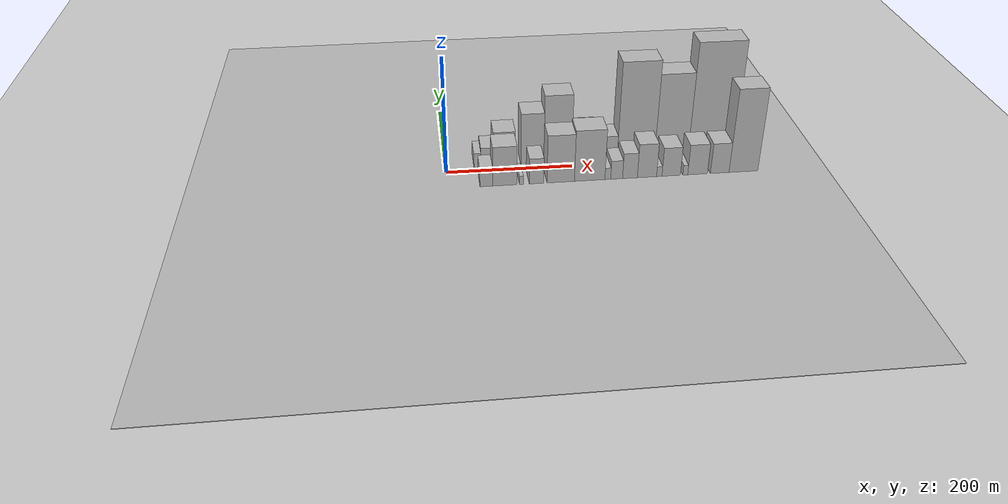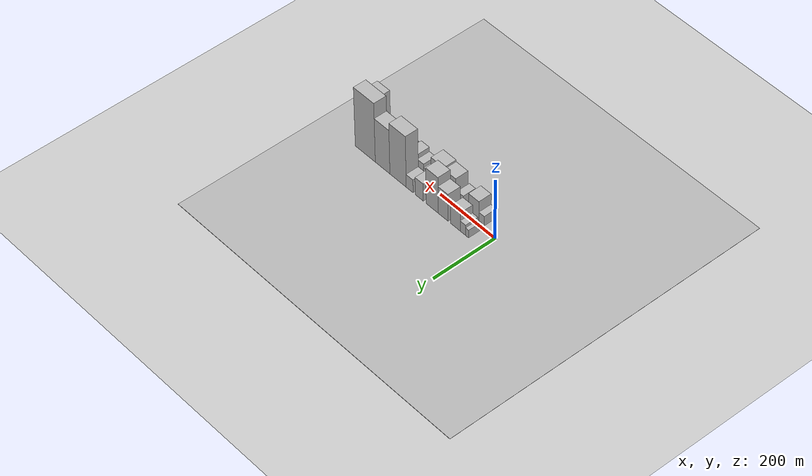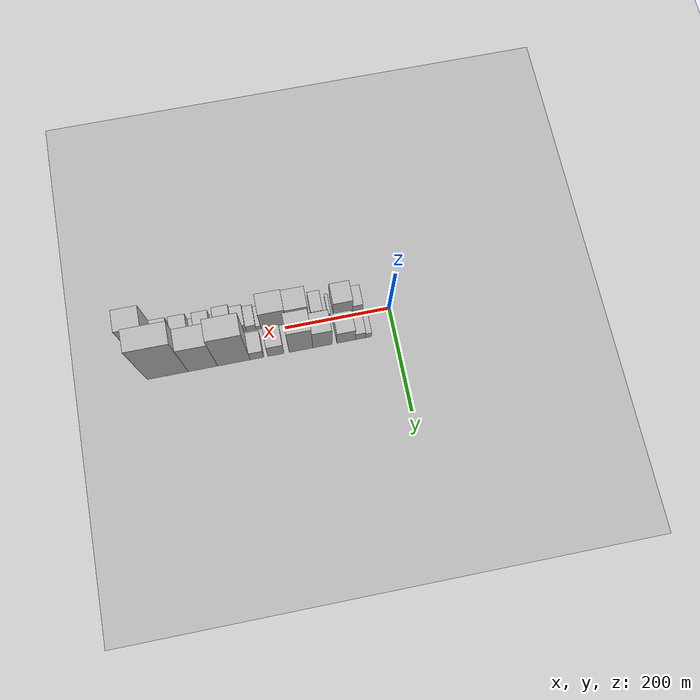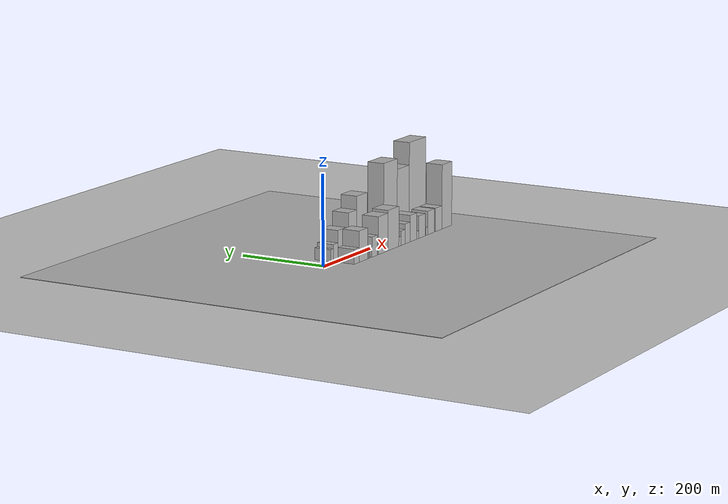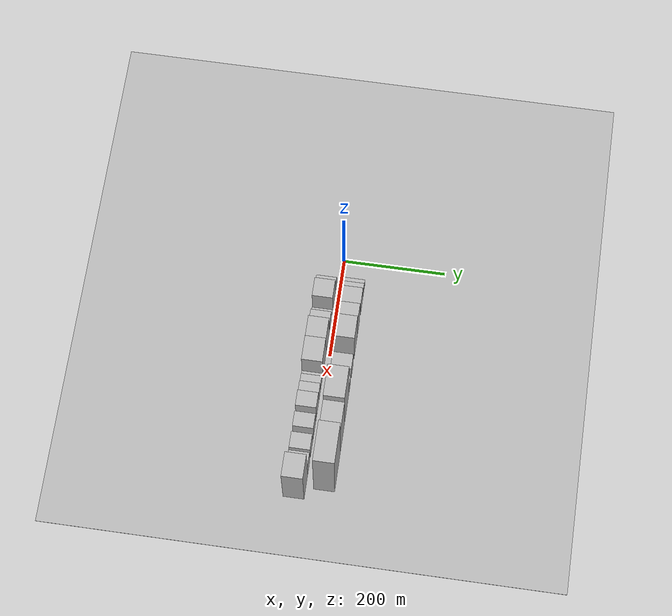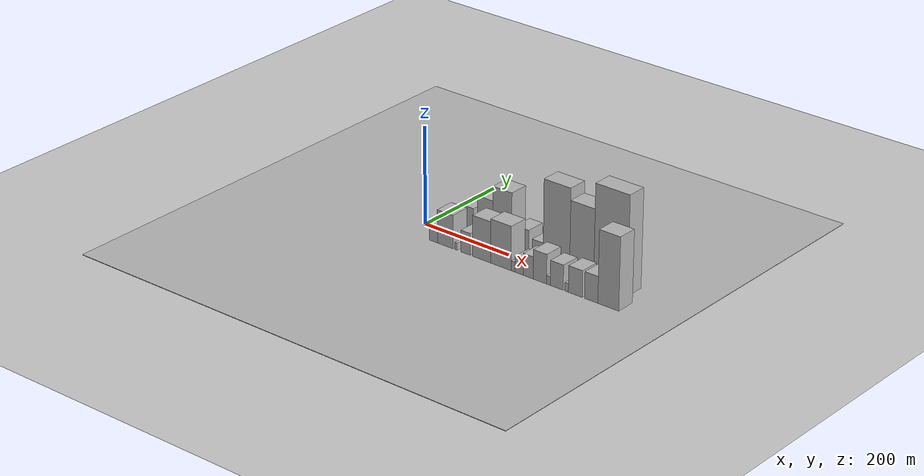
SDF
<?xml version="1.0" encoding="utf-8"?>

<sdf version="1.6">

   <world name="default">

      <gui fullscreen="0">

         <camera name="user_camera">

            <pose>-15 0 4.57585 0 0 0</pose>

            <view_controller>orbit</view_controller>

         </camera>

      </gui>

      <scene>

         <sky>

           <clouds>

             <speed>12</speed>

           </clouds>

         </sky>

         <ambient>0.4 0.4 0.4 1</ambient>

         <background>0.7 0.7 0.7 1</background>

         <shadows>1</shadows>

      </scene>

      <gravity>0 0 -9.8066</gravity>

      <magnetic_field>6e-06 2.3e-05 -4.2e-05</magnetic_field>

      <physics default="0" name="default_physics" type="ode">

         <ode>

            <solver>

               <type>quick</type>

               <iters>10</iters>

               <sor>1.0</sor>

               <use_dynamic_moi_rescaling>0</use_dynamic_moi_rescaling>

            </solver>

            <constraints>

               <cfm>0</cfm>

               <erp>0.2</erp>

               <contact_max_correcting_vel>100</contact_max_correcting_vel>

               <contact_surface_layer>0.001</contact_surface_layer>

            </constraints>

         </ode>

         <max_step_size>0.004</max_step_size>

         <real_time_factor>1</real_time_factor>

         <real_time_update_rate>250</real_time_update_rate>

      </physics>

      <light name="sun" type="directional">

         <cast_shadows>1</cast_shadows>

         <pose>0 0 10 0 0 0</pose>

         <diffuse>0.8 0.8 0.8 1</diffuse>

         <specular>0.2 0.2 0.2 1</specular>

         <attenuation>

            <range>1000</range>

            <constant>0.9</constant>

            <linear>0.01</linear>

            <quadratic>0.001</quadratic>

         </attenuation>

         <direction>-0.5 0.1 -0.9</direction>

      </light>

      <include>

         <name>ground_plane_1</name>

         <uri>model://HANNAS_ground_plane</uri>

         <pose>0 0 0  0 0 0</pose>

      </include>

      <include>

         <name>ground_plane_2</name>

         <uri>model://HANNAS_ground_plane</uri>

         <pose>100 0 0  0 0 0</pose>

      </include>

      <model name="building_1">

         <static>1</static>

         <pose frame="">49.5234 27.5000 0 0.000000 0.000000 1.570796</pose>

         <link name="link">

            <pose frame="">0 0 13.50 0 0 0</pose>

            <collision name="collision">

               <geometry>

                  <box>

                     <size>40.0000 11.0468 27.0000</size>

                  </box>

               </geometry>

               <max_contacts>10</max_contacts>

               <surface>

                  <contact>

                     <ode/>

                  </contact>

                  <bounce/>

                  <friction>

                     <torsional>

                        <ode/>

                     </torsional>

                     <ode/>

                  </friction>

               </surface>

            </collision>

            <visual name="visual">

               <cast_shadows>0</cast_shadows>

               <geometry>

                  <box>

                     <size>40.0000 11.0468 27.0000</size>

                  </box>

               </geometry>

               <material>

                  <script>

                     <uri>model://HANNAS_wall/materials/scripts</uri>

                     <uri>model://HANNAS_wall/materials/textures</uri>

                     <name>vrc/HANNAS_wall</name>

                  </script>

               </material>

            </visual>

            <self_collide>0</self_collide>

            <enable_wind>0</enable_wind>

            <kinematic>0</kinematic>

         </link>

      </model>

      <model name="building_2">

         <static>1</static>

         <pose frame="">64.9606 27.5000 0 0.000000 0.000000 1.570796</pose>

         <link name="link">

            <pose frame="">0 0 18.00 0 0 0</pose>

            <collision name="collision">

               <geometry>

                  <box>

                     <size>40.0000 19.8275 36.0000</size>

                  </box>

               </geometry>

               <max_contacts>10</max_contacts>

               <surface>

                  <contact>

                     <ode/>

                  </contact>

                  <bounce/>

                  <friction>

                     <torsional>

                        <ode/>

                     </torsional>

                     <ode/>

                  </friction>

               </surface>

            </collision>

            <visual name="visual">

               <cast_shadows>0</cast_shadows>

               <geometry>

                  <box>

                     <size>40.0000 19.8275 36.0000</size>

                  </box>

               </geometry>

               <material>

                  <script>

                     <uri>model://HANNAS_wall/materials/scripts</uri>

                     <uri>model://HANNAS_wall/materials/textures</uri>

                     <name>vrc/HANNAS_wall</name>

                  </script>

               </material>

            </visual>

            <self_collide>0</self_collide>

            <enable_wind>0</enable_wind>

            <kinematic>0</kinematic>

         </link>

      </model>

      <model name="building_3">

         <static>1</static>

         <pose frame="">92.3410 27.5000 0 0.000000 0.000000 1.570796</pose>

         <link name="link">

            <pose frame="">0 0 31.50 0 0 0</pose>

            <collision name="collision">

               <geometry>

                  <box>

                     <size>40.0000 34.9333 63.0000</size>

                  </box>

               </geometry>

               <max_contacts>10</max_contacts>

               <surface>

                  <contact>

                     <ode/>

                  </contact>

                  <bounce/>

                  <friction>

                     <torsional>

                        <ode/>

                     </torsional>

                     <ode/>

                  </friction>

               </surface>

            </collision>

            <visual name="visual">

               <cast_shadows>0</cast_shadows>

               <geometry>

                  <box>

                     <size>40.0000 34.9333 63.0000</size>

                  </box>

               </geometry>

               <material>

                  <script>

                     <uri>model://HANNAS_wall/materials/scripts</uri>

                     <uri>model://HANNAS_wall/materials/textures</uri>

                     <name>vrc/HANNAS_wall</name>

                  </script>

               </material>

            </visual>

            <self_collide>0</self_collide>

            <enable_wind>0</enable_wind>

            <kinematic>0</kinematic>

         </link>

      </model>

      <model name="building_4">

         <static>1</static>

         <pose frame="">137.1429 27.5000 0 0.000000 0.000000 1.570796</pose>

         <link name="link">

            <pose frame="">0 0 46.50 0 0 0</pose>

            <collision name="collision">

               <geometry>

                  <box>

                     <size>40.0000 36.6705 93.0000</size>

                  </box>

               </geometry>

               <max_contacts>10</max_contacts>

               <surface>

                  <contact>

                     <ode/>

                  </contact>

                  <bounce/>

                  <friction>

                     <torsional>

                        <ode/>

                     </torsional>

                     <ode/>

                  </friction>

               </surface>

            </collision>

            <visual name="visual">

               <cast_shadows>0</cast_shadows>

               <geometry>

                  <box>

                     <size>40.0000 36.6705 93.0000</size>

                  </box>

               </geometry>

               <material>

                  <script>

                     <uri>model://HANNAS_wall/materials/scripts</uri>

                     <uri>model://HANNAS_wall/materials/textures</uri>

                     <name>vrc/HANNAS_wall</name>

                  </script>

               </material>

            </visual>

            <self_collide>0</self_collide>

            <enable_wind>0</enable_wind>

            <kinematic>0</kinematic>

         </link>

      </model>

      <model name="building_5">

         <static>1</static>

         <pose frame="">177.8812 27.5000 0 0.000000 0.000000 1.570796</pose>

         <link name="link">

            <pose frame="">0 0 61.50 0 0 0</pose>

            <collision name="collision">

               <geometry>

                  <box>

                     <size>40.0000 44.8061 123.0000</size>

                  </box>

               </geometry>

               <max_contacts>10</max_contacts>

               <surface>

                  <contact>

                     <ode/>

                  </contact>

                  <bounce/>

                  <friction>

                     <torsional>

                        <ode/>

                     </torsional>

                     <ode/>

                  </friction>

               </surface>

            </collision>

            <visual name="visual">

               <cast_shadows>0</cast_shadows>

               <geometry>

                  <box>

                     <size>40.0000 44.8061 123.0000</size>

                  </box>

               </geometry>

               <material>

                  <script>

                     <uri>model://HANNAS_wall/materials/scripts</uri>

                     <uri>model://HANNAS_wall/materials/textures</uri>

                     <name>vrc/HANNAS_wall</name>

                  </script>

               </material>

            </visual>

            <self_collide>0</self_collide>

            <enable_wind>0</enable_wind>

            <kinematic>0</kinematic>

         </link>

      </model>

      <model name="building_6">

         <static>1</static>

         <pose frame="">225.2993 27.5000 0 0.000000 0.000000 1.570796</pose>

         <link name="link">

            <pose frame="">0 0 30.00 0 0 0</pose>

            <collision name="collision">

               <geometry>

                  <box>

                     <size>40.0000 30.0302 60.0000</size>

                  </box>

               </geometry>

               <max_contacts>10</max_contacts>

               <surface>

                  <contact>

                     <ode/>

                  </contact>

                  <bounce/>

                  <friction>

                     <torsional>

                        <ode/>

                     </torsional>

                     <ode/>

                  </friction>

               </surface>

            </collision>

            <visual name="visual">

               <cast_shadows>0</cast_shadows>

               <geometry>

                  <box>

                     <size>40.0000 30.0302 60.0000</size>

                  </box>

               </geometry>

               <material>

                  <script>

                     <uri>model://HANNAS_wall/materials/scripts</uri>

                     <uri>model://HANNAS_wall/materials/textures</uri>

                     <name>vrc/HANNAS_wall</name>

                  </script>

               </material>

            </visual>

            <self_collide>0</self_collide>

            <enable_wind>0</enable_wind>

            <kinematic>0</kinematic>

         </link>

      </model>

      <model name="building_7">

         <static>1</static>

         <pose frame="">261.1327 27.5000 0 0.000000 0.000000 1.570796</pose>

         <link name="link">

            <pose frame="">0 0 22.50 0 0 0</pose>

            <collision name="collision">

               <geometry>

                  <box>

                     <size>40.0000 25.6365 45.0000</size>

                  </box>

               </geometry>

               <max_contacts>10</max_contacts>

               <surface>

                  <contact>

                     <ode/>

                  </contact>

                  <bounce/>

                  <friction>

                     <torsional>

                        <ode/>

                     </torsional>

                     <ode/>

                  </friction>

               </surface>

            </collision>

            <visual name="visual">

               <cast_shadows>0</cast_shadows>

               <geometry>

                  <box>

                     <size>40.0000 25.6365 45.0000</size>

                  </box>

               </geometry>

               <material>

                  <script>

                     <uri>model://HANNAS_wall/materials/scripts</uri>

                     <uri>model://HANNAS_wall/materials/textures</uri>

                     <name>vrc/HANNAS_wall</name>

                  </script>

               </material>

            </visual>

            <self_collide>0</self_collide>

            <enable_wind>0</enable_wind>

            <kinematic>0</kinematic>

         </link>

      </model>

      <model name="building_8">

         <static>1</static>

         <pose frame="">304.5386 27.5000 0 0.000000 0.000000 1.570796</pose>

         <link name="link">

            <pose frame="">0 0 87.00 0 0 0</pose>

            <collision name="collision">

               <geometry>

                  <box>

                     <size>40.0000 61.1754 174.0000</size>

                  </box>

               </geometry>

               <max_contacts>10</max_contacts>

               <surface>

                  <contact>

                     <ode/>

                  </contact>

                  <bounce/>

                  <friction>

                     <torsional>

                        <ode/>

                     </torsional>

                     <ode/>

                  </friction>

               </surface>

            </collision>

            <visual name="visual">

               <cast_shadows>0</cast_shadows>

               <geometry>

                  <box>

                     <size>40.0000 61.1754 174.0000</size>

                  </box>

               </geometry>

               <material>

                  <script>

                     <uri>model://HANNAS_wall/materials/scripts</uri>

                     <uri>model://HANNAS_wall/materials/textures</uri>

                     <name>vrc/HANNAS_wall</name>

                  </script>

               </material>

            </visual>

            <self_collide>0</self_collide>

            <enable_wind>0</enable_wind>

            <kinematic>0</kinematic>

         </link>

      </model>

      <model name="building_9">

         <static>1</static>

         <pose frame="">362.6534 27.5000 0 0.000000 0.000000 1.570796</pose>

         <link name="link">

            <pose frame="">0 0 75.00 0 0 0</pose>

            <collision name="collision">

               <geometry>

                  <box>

                     <size>40.0000 55.0542 150.0000</size>

                  </box>

               </geometry>

               <max_contacts>10</max_contacts>

               <surface>

                  <contact>

                     <ode/>

                  </contact>

                  <bounce/>

                  <friction>

                     <torsional>

                        <ode/>

                     </torsional>

                     <ode/>

                  </friction>

               </surface>

            </collision>

            <visual name="visual">

               <cast_shadows>0</cast_shadows>

               <geometry>

                  <box>

                     <size>40.0000 55.0542 150.0000</size>

                  </box>

               </geometry>

               <material>

                  <script>

                     <uri>model://HANNAS_wall/materials/scripts</uri>

                     <uri>model://HANNAS_wall/materials/textures</uri>

                     <name>vrc/HANNAS_wall</name>

                  </script>

               </material>

            </visual>

            <self_collide>0</self_collide>

            <enable_wind>0</enable_wind>

            <kinematic>0</kinematic>

         </link>

      </model>

      <model name="building_10">

         <static>1</static>

         <pose frame="">428.3415 27.5000 0 0.000000 0.000000 1.570796</pose>

         <link name="link">

            <pose frame="">0 0 100.50 0 0 0</pose>

            <collision name="collision">

               <geometry>

                  <box>

                     <size>40.0000 76.3220 201.0000</size>

                  </box>

               </geometry>

               <max_contacts>10</max_contacts>

               <surface>

                  <contact>

                     <ode/>

                  </contact>

                  <bounce/>

                  <friction>

                     <torsional>

                        <ode/>

                     </torsional>

                     <ode/>

                  </friction>

               </surface>

            </collision>

            <visual name="visual">

               <cast_shadows>0</cast_shadows>

               <geometry>

                  <box>

                     <size>40.0000 76.3220 201.0000</size>

                  </box>

               </geometry>

               <material>

                  <script>

                     <uri>model://HANNAS_wall/materials/scripts</uri>

                     <uri>model://HANNAS_wall/materials/textures</uri>

                     <name>vrc/HANNAS_wall</name>

                  </script>

               </material>

            </visual>

            <self_collide>0</self_collide>

            <enable_wind>0</enable_wind>

            <kinematic>0</kinematic>

         </link>

      </model>

      <model name="building_11">

         <static>1</static>

         <pose frame="">58.8940 -27.5000 0 0.000000 0.000000 1.570796</pose>

         <link name="link">

            <pose frame="">0 0 16.50 0 0 0</pose>

            <collision name="collision">

               <geometry>

                  <box>

                     <size>40.0000 19.7880 33.0000</size>

                  </box>

               </geometry>

               <max_contacts>10</max_contacts>

               <surface>

                  <contact>

                     <ode/>

                  </contact>

                  <bounce/>

                  <friction>

                     <torsional>

                        <ode/>

                     </torsional>

                     <ode/>

                  </friction>

               </surface>

            </collision>

            <visual name="visual">

               <cast_shadows>0</cast_shadows>

               <geometry>

                  <box>

                     <size>40.0000 19.7880 33.0000</size>

                  </box>

               </geometry>

               <material>

                  <script>

                     <uri>model://HANNAS_wall/materials/scripts</uri>

                     <uri>model://HANNAS_wall/materials/textures</uri>

                     <name>vrc/HANNAS_wall</name>

                  </script>

               </material>

            </visual>

            <self_collide>0</self_collide>

            <enable_wind>0</enable_wind>

            <kinematic>0</kinematic>

         </link>

      </model>

      <model name="building_12">

         <static>1</static>

         <pose frame="">87.5025 -27.5000 0 0.000000 0.000000 1.570796</pose>

         <link name="link">

            <pose frame="">0 0 34.50 0 0 0</pose>

            <collision name="collision">

               <geometry>

                  <box>

                     <size>40.0000 37.4291 69.0000</size>

                  </box>

               </geometry>

               <max_contacts>10</max_contacts>

               <surface>

                  <contact>

                     <ode/>

                  </contact>

                  <bounce/>

                  <friction>

                     <torsional>

                        <ode/>

                     </torsional>

                     <ode/>

                  </friction>

               </surface>

            </collision>

            <visual name="visual">

               <cast_shadows>0</cast_shadows>

               <geometry>

                  <box>

                     <size>40.0000 37.4291 69.0000</size>

                  </box>

               </geometry>

               <material>

                  <script>

                     <uri>model://HANNAS_wall/materials/scripts</uri>

                     <uri>model://HANNAS_wall/materials/textures</uri>

                     <name>vrc/HANNAS_wall</name>

                  </script>

               </material>

            </visual>

            <self_collide>0</self_collide>

            <enable_wind>0</enable_wind>

            <kinematic>0</kinematic>

         </link>

      </model>

      <model name="building_13">

         <static>1</static>

         <pose frame="">113.2656 -27.5000 0 0.000000 0.000000 1.570796</pose>

         <link name="link">

            <pose frame="">0 0 7.50 0 0 0</pose>

            <collision name="collision">

               <geometry>

                  <box>

                     <size>40.0000 6.0970 15.0000</size>

                  </box>

               </geometry>

               <max_contacts>10</max_contacts>

               <surface>

                  <contact>

                     <ode/>

                  </contact>

                  <bounce/>

                  <friction>

                     <torsional>

                        <ode/>

                     </torsional>

                     <ode/>

                  </friction>

               </surface>

            </collision>

            <visual name="visual">

               <cast_shadows>0</cast_shadows>

               <geometry>

                  <box>

                     <size>40.0000 6.0970 15.0000</size>

                  </box>

               </geometry>

               <material>

                  <script>

                     <uri>model://HANNAS_wall/materials/scripts</uri>

                     <uri>model://HANNAS_wall/materials/textures</uri>

                     <name>vrc/HANNAS_wall</name>

                  </script>

               </material>

            </visual>

            <self_collide>0</self_collide>

            <enable_wind>0</enable_wind>

            <kinematic>0</kinematic>

         </link>

      </model>

      <model name="building_14">

         <static>1</static>

         <pose frame="">136.6493 -27.5000 0 0.000000 0.000000 1.570796</pose>

         <link name="link">

            <pose frame="">0 0 22.50 0 0 0</pose>

            <collision name="collision">

               <geometry>

                  <box>

                     <size>40.0000 22.6705 45.0000</size>

                  </box>

               </geometry>

               <max_contacts>10</max_contacts>

               <surface>

                  <contact>

                     <ode/>

                  </contact>

                  <bounce/>

                  <friction>

                     <torsional>

                        <ode/>

                     </torsional>

                     <ode/>

                  </friction>

               </surface>

            </collision>

            <visual name="visual">

               <cast_shadows>0</cast_shadows>

               <geometry>

                  <box>

                     <size>40.0000 22.6705 45.0000</size>

                  </box>

               </geometry>

               <material>

                  <script>

                     <uri>model://HANNAS_wall/materials/scripts</uri>

                     <uri>model://HANNAS_wall/materials/textures</uri>

                     <name>vrc/HANNAS_wall</name>

                  </script>

               </material>

            </visual>

            <self_collide>0</self_collide>

            <enable_wind>0</enable_wind>

            <kinematic>0</kinematic>

         </link>

      </model>

      <model name="building_15">

         <static>1</static>

         <pose frame="">174.4531 -27.5000 0 0.000000 0.000000 1.570796</pose>

         <link name="link">

            <pose frame="">0 0 42.00 0 0 0</pose>

            <collision name="collision">

               <geometry>

                  <box>

                     <size>40.0000 42.9371 84.0000</size>

                  </box>

               </geometry>

               <max_contacts>10</max_contacts>

               <surface>

                  <contact>

                     <ode/>

                  </contact>

                  <bounce/>

                  <friction>

                     <torsional>

                        <ode/>

                     </torsional>

                     <ode/>

                  </friction>

               </surface>

            </collision>

            <visual name="visual">

               <cast_shadows>0</cast_shadows>

               <geometry>

                  <box>

                     <size>40.0000 42.9371 84.0000</size>

                  </box>

               </geometry>

               <material>

                  <script>

                     <uri>model://HANNAS_wall/materials/scripts</uri>

                     <uri>model://HANNAS_wall/materials/textures</uri>

                     <name>vrc/HANNAS_wall</name>

                  </script>

               </material>

            </visual>

            <self_collide>0</self_collide>

            <enable_wind>0</enable_wind>

            <kinematic>0</kinematic>

         </link>

      </model>

      <model name="building_16">

         <static>1</static>

         <pose frame="">219.8543 -27.5000 0 0.000000 0.000000 1.570796</pose>

         <link name="link">

            <pose frame="">0 0 45.00 0 0 0</pose>

            <collision name="collision">

               <geometry>

                  <box>

                     <size>40.0000 47.8654 90.0000</size>

                  </box>

               </geometry>

               <max_contacts>10</max_contacts>

               <surface>

                  <contact>

                     <ode/>

                  </contact>

                  <bounce/>

                  <friction>

                     <torsional>

                        <ode/>

                     </torsional>

                     <ode/>

                  </friction>

               </surface>

            </collision>

            <visual name="visual">

               <cast_shadows>0</cast_shadows>

               <geometry>

                  <box>

                     <size>40.0000 47.8654 90.0000</size>

                  </box>

               </geometry>

               <material>

                  <script>

                     <uri>model://HANNAS_wall/materials/scripts</uri>

                     <uri>model://HANNAS_wall/materials/textures</uri>

                     <name>vrc/HANNAS_wall</name>

                  </script>

               </material>

            </visual>

            <self_collide>0</self_collide>

            <enable_wind>0</enable_wind>

            <kinematic>0</kinematic>

         </link>

      </model>

      <model name="building_17">

         <static>1</static>

         <pose frame="">248.3898 -27.5000 0 0.000000 0.000000 1.570796</pose>

         <link name="link">

            <pose frame="">0 0 10.50 0 0 0</pose>

            <collision name="collision">

               <geometry>

                  <box>

                     <size>40.0000 9.2055 21.0000</size>

                  </box>

               </geometry>

               <max_contacts>10</max_contacts>

               <surface>

                  <contact>

                     <ode/>

                  </contact>

                  <bounce/>

                  <friction>

                     <torsional>

                        <ode/>

                     </torsional>

                     <ode/>

                  </friction>

               </surface>

            </collision>

            <visual name="visual">

               <cast_shadows>0</cast_shadows>

               <geometry>

                  <box>

                     <size>40.0000 9.2055 21.0000</size>

                  </box>

               </geometry>

               <material>

                  <script>

                     <uri>model://HANNAS_wall/materials/scripts</uri>

                     <uri>model://HANNAS_wall/materials/textures</uri>

                     <name>vrc/HANNAS_wall</name>

                  </script>

               </material>

            </visual>

            <self_collide>0</self_collide>

            <enable_wind>0</enable_wind>

            <kinematic>0</kinematic>

         </link>

      </model>

      <model name="building_18">

         <static>1</static>

         <pose frame="">262.3675 -27.5000 0 0.000000 0.000000 1.570796</pose>

         <link name="link">

            <pose frame="">0 0 16.50 0 0 0</pose>

            <collision name="collision">

               <geometry>

                  <box>

                     <size>40.0000 18.7498 33.0000</size>

                  </box>

               </geometry>

               <max_contacts>10</max_contacts>

               <surface>

                  <contact>

                     <ode/>

                  </contact>

                  <bounce/>

                  <friction>

                     <torsional>

                        <ode/>

                     </torsional>

                     <ode/>

                  </friction>

               </surface>

            </collision>

            <visual name="visual">

               <cast_shadows>0</cast_shadows>

               <geometry>

                  <box>

                     <size>40.0000 18.7498 33.0000</size>

                  </box>

               </geometry>

               <material>

                  <script>

                     <uri>model://HANNAS_wall/materials/scripts</uri>

                     <uri>model://HANNAS_wall/materials/textures</uri>

                     <name>vrc/HANNAS_wall</name>

                  </script>

               </material>

            </visual>

            <self_collide>0</self_collide>

            <enable_wind>0</enable_wind>

            <kinematic>0</kinematic>

         </link>

      </model>

      <model name="building_19">

         <static>1</static>

         <pose frame="">283.4699 -27.5000 0 0.000000 0.000000 1.570796</pose>

         <link name="link">

            <pose frame="">0 0 22.50 0 0 0</pose>

            <collision name="collision">

               <geometry>

                  <box>

                     <size>40.0000 23.4550 45.0000</size>

                  </box>

               </geometry>

               <max_contacts>10</max_contacts>

               <surface>

                  <contact>

                     <ode/>

                  </contact>

                  <bounce/>

                  <friction>

                     <torsional>

                        <ode/>

                     </torsional>

                     <ode/>

                  </friction>

               </surface>

            </collision>

            <visual name="visual">

               <cast_shadows>0</cast_shadows>

               <geometry>

                  <box>

                     <size>40.0000 23.4550 45.0000</size>

                  </box>

               </geometry>

               <material>

                  <script>

                     <uri>model://HANNAS_wall/materials/scripts</uri>

                     <uri>model://HANNAS_wall/materials/textures</uri>

                     <name>vrc/HANNAS_wall</name>

                  </script>

               </material>

            </visual>

            <self_collide>0</self_collide>

            <enable_wind>0</enable_wind>

            <kinematic>0</kinematic>

         </link>

      </model>

      <model name="building_20">

         <static>1</static>

         <pose frame="">310.4709 -27.5000 0 0.000000 0.000000 1.570796</pose>

         <link name="link">

            <pose frame="">0 0 30.00 0 0 0</pose>

            <collision name="collision">

               <geometry>

                  <box>

                     <size>40.0000 30.5470 60.0000</size>

                  </box>

               </geometry>

               <max_contacts>10</max_contacts>

               <surface>

                  <contact>

                     <ode/>

                  </contact>

                  <bounce/>

                  <friction>

                     <torsional>

                        <ode/>

                     </torsional>

                     <ode/>

                  </friction>

               </surface>

            </collision>

            <visual name="visual">

               <cast_shadows>0</cast_shadows>

               <geometry>

                  <box>

                     <size>40.0000 30.5470 60.0000</size>

                  </box>

               </geometry>

               <material>

                  <script>

                     <uri>model://HANNAS_wall/materials/scripts</uri>

                     <uri>model://HANNAS_wall/materials/textures</uri>

                     <name>vrc/HANNAS_wall</name>

                  </script>

               </material>

            </visual>

            <self_collide>0</self_collide>

            <enable_wind>0</enable_wind>

            <kinematic>0</kinematic>

         </link>

      </model>

      <model name="building_21">

         <static>1</static>

         <pose frame="">330.0620 -27.5000 0 0.000000 0.000000 1.570796</pose>

         <link name="link">

            <pose frame="">0 0 9.00 0 0 0</pose>

            <collision name="collision">

               <geometry>

                  <box>

                     <size>40.0000 8.6353 18.0000</size>

                  </box>

               </geometry>

               <max_contacts>10</max_contacts>

               <surface>

                  <contact>

                     <ode/>

                  </contact>

                  <bounce/>

                  <friction>

                     <torsional>

                        <ode/>

                     </torsional>

                     <ode/>

                  </friction>

               </surface>

            </collision>

            <visual name="visual">

               <cast_shadows>0</cast_shadows>

               <geometry>

                  <box>

                     <size>40.0000 8.6353 18.0000</size>

                  </box>

               </geometry>

               <material>

                  <script>

                     <uri>model://HANNAS_wall/materials/scripts</uri>

                     <uri>model://HANNAS_wall/materials/textures</uri>

                     <name>vrc/HANNAS_wall</name>

                  </script>

               </material>

            </visual>

            <self_collide>0</self_collide>

            <enable_wind>0</enable_wind>

            <kinematic>0</kinematic>

         </link>

      </model>

      <model name="building_22">

         <static>1</static>

         <pose frame="">349.1088 -27.5000 0 0.000000 0.000000 1.570796</pose>

         <link name="link">

            <pose frame="">0 0 25.50 0 0 0</pose>

            <collision name="collision">

               <geometry>

                  <box>

                     <size>40.0000 29.4584 51.0000</size>

                  </box>

               </geometry>

               <max_contacts>10</max_contacts>

               <surface>

                  <contact>

                     <ode/>

                  </contact>

                  <bounce/>

                  <friction>

                     <torsional>

                        <ode/>

                     </torsional>

                     <ode/>

                  </friction>

               </surface>

            </collision>

            <visual name="visual">

               <cast_shadows>0</cast_shadows>

               <geometry>

                  <box>

                     <size>40.0000 29.4584 51.0000</size>

                  </box>

               </geometry>

               <material>

                  <script>

                     <uri>model://HANNAS_wall/materials/scripts</uri>

                     <uri>model://HANNAS_wall/materials/textures</uri>

                     <name>vrc/HANNAS_wall</name>

                  </script>

               </material>

            </visual>

            <self_collide>0</self_collide>

            <enable_wind>0</enable_wind>

            <kinematic>0</kinematic>

         </link>

      </model>

      <model name="building_23">

         <static>1</static>

         <pose frame="">371.7094 -27.5000 0 0.000000 0.000000 1.570796</pose>

         <link name="link">

            <pose frame="">0 0 9.00 0 0 0</pose>

            <collision name="collision">

               <geometry>

                  <box>

                     <size>40.0000 7.7428 18.0000</size>

                  </box>

               </geometry>

               <max_contacts>10</max_contacts>

               <surface>

                  <contact>

                     <ode/>

                  </contact>

                  <bounce/>

                  <friction>

                     <torsional>

                        <ode/>

                     </torsional>

                     <ode/>

                  </friction>

               </surface>

            </collision>

            <visual name="visual">

               <cast_shadows>0</cast_shadows>

               <geometry>

                  <box>

                     <size>40.0000 7.7428 18.0000</size>

                  </box>

               </geometry>

               <material>

                  <script>

                     <uri>model://HANNAS_wall/materials/scripts</uri>

                     <uri>model://HANNAS_wall/materials/textures</uri>

                     <name>vrc/HANNAS_wall</name>

                  </script>

               </material>

            </visual>

            <self_collide>0</self_collide>

            <enable_wind>0</enable_wind>

            <kinematic>0</kinematic>

         </link>

      </model>

      <model name="building_24">

         <static>1</static>

         <pose frame="">391.3219 -27.5000 0 0.000000 0.000000 1.570796</pose>

         <link name="link">

            <pose frame="">0 0 27.00 0 0 0</pose>

            <collision name="collision">

               <geometry>

                  <box>

                     <size>40.0000 31.4823 54.0000</size>

                  </box>

               </geometry>

               <max_contacts>10</max_contacts>

               <surface>

                  <contact>

                     <ode/>

                  </contact>

                  <bounce/>

                  <friction>

                     <torsional>

                        <ode/>

                     </torsional>

                     <ode/>

                  </friction>

               </surface>

            </collision>

            <visual name="visual">

               <cast_shadows>0</cast_shadows>

               <geometry>

                  <box>

                     <size>40.0000 31.4823 54.0000</size>

                  </box>

               </geometry>

               <material>

                  <script>

                     <uri>model://HANNAS_wall/materials/scripts</uri>

                     <uri>model://HANNAS_wall/materials/textures</uri>

                     <name>vrc/HANNAS_wall</name>

                  </script>

               </material>

            </visual>

            <self_collide>0</self_collide>

            <enable_wind>0</enable_wind>

            <kinematic>0</kinematic>

         </link>

      </model>

      <model name="building_25">

         <static>1</static>

         <pose frame="">427.0341 -27.5000 0 0.000000 0.000000 1.570796</pose>

         <link name="link">

            <pose frame="">0 0 27.00 0 0 0</pose>

            <collision name="collision">

               <geometry>

                  <box>

                     <size>40.0000 29.9421 54.0000</size>

                  </box>

               </geometry>

               <max_contacts>10</max_contacts>

               <surface>

                  <contact>

                     <ode/>

                  </contact>

                  <bounce/>

                  <friction>

                     <torsional>

                        <ode/>

                     </torsional>

                     <ode/>

                  </friction>

               </surface>

            </collision>

            <visual name="visual">

               <cast_shadows>0</cast_shadows>

               <geometry>

                  <box>

                     <size>40.0000 29.9421 54.0000</size>

                  </box>

               </geometry>

               <material>

                  <script>

                     <uri>model://HANNAS_wall/materials/scripts</uri>

                     <uri>model://HANNAS_wall/materials/textures</uri>

                     <name>vrc/HANNAS_wall</name>

                  </script>

               </material>

            </visual>

            <self_collide>0</self_collide>

            <enable_wind>0</enable_wind>

            <kinematic>0</kinematic>

         </link>

      </model>

      <model name="building_26">

         <static>1</static>

         <pose frame="">465.2822 -27.5000 0 0.000000 0.000000 1.570796</pose>

         <link name="link">

            <pose frame="">0 0 73.50 0 0 0</pose>

            <collision name="collision">

               <geometry>

                  <box>

                     <size>40.0000 46.5541 147.0000</size>

                  </box>

               </geometry>

               <max_contacts>10</max_contacts>

               <surface>

                  <contact>

                     <ode/>

                  </contact>

                  <bounce/>

                  <friction>

                     <torsional>

                        <ode/>

                     </torsional>

                     <ode/>

                  </friction>

               </surface>

            </collision>

            <visual name="visual">

               <cast_shadows>0</cast_shadows>

               <geometry>

                  <box>

                     <size>40.0000 46.5541 147.0000</size>

                  </box>

               </geometry>

               <material>

                  <script>

                     <uri>model://HANNAS_wall/materials/scripts</uri>

                     <uri>model://HANNAS_wall/materials/textures</uri>

                     <name>vrc/HANNAS_wall</name>

                  </script>

               </material>

            </visual>

            <self_collide>0</self_collide>

            <enable_wind>0</enable_wind>

            <kinematic>0</kinematic>

         </link>

      </model>

   </world>

</sdf>

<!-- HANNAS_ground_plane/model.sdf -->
<sdf version="1.4">
<model name="HANNAS_ground_plane">
  <static>true</static>
    <link name="link">
      <collision name="collision">
        <geometry>
          <plane>
            <normal>0 0 1</normal>
            <size>1000 1000</size>
          </plane>
        </geometry>
        <surface>
          <friction>
            <ode>
              <mu>100</mu>
              <mu2>50</mu2>
            </ode>
          </friction>
        </surface>
      </collision>
      <visual name="visual">
        <cast_shadows>false</cast_shadows>
        <geometry>
          <plane>
            <normal>0 0 1</normal>
            <size>1000 1000</size>
          </plane>
        </geometry>
        <material>
          <script>
            <uri>model://HANNAS_ground_plane/materials/scripts/HANNAS_ground_plane.material</uri>
	    <uri>model://HANNAS_ground_plane/materials/textures</uri>
            <name>HANNASGroundPlane/Image</name>
          </script>
        </material>
      </visual>
    </link>
  </model>
</sdf>
